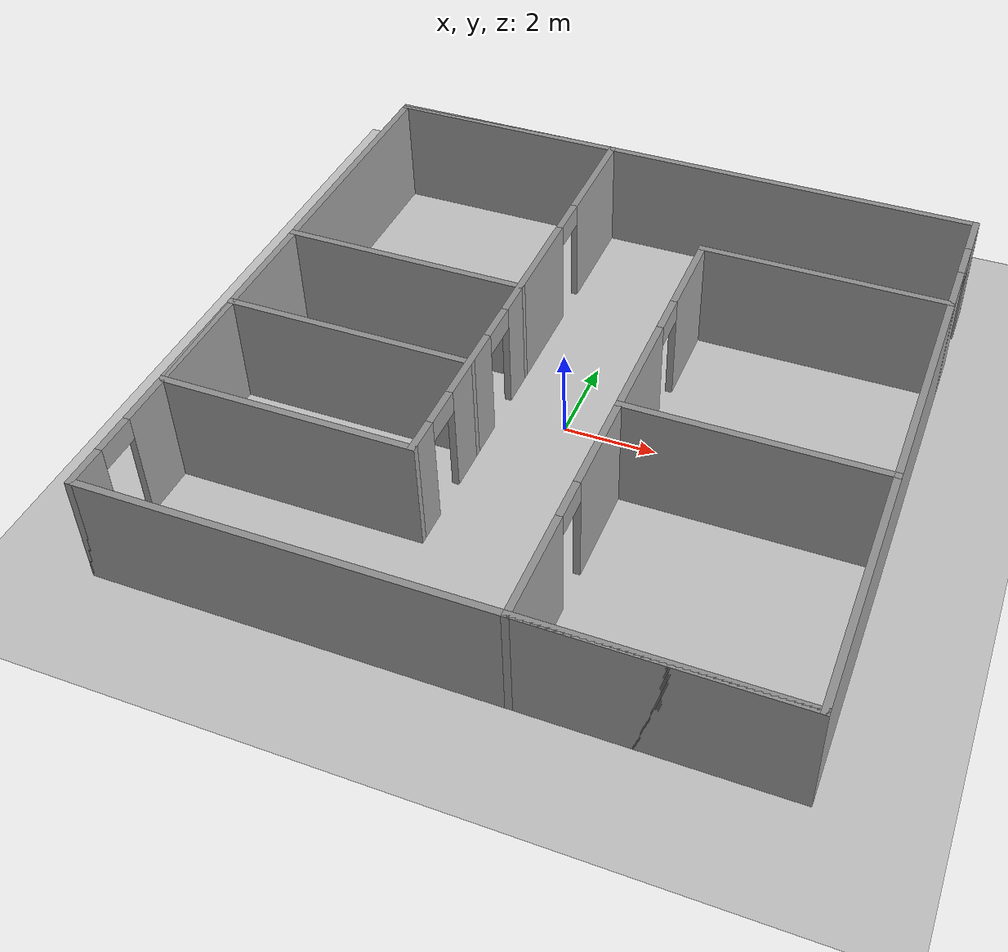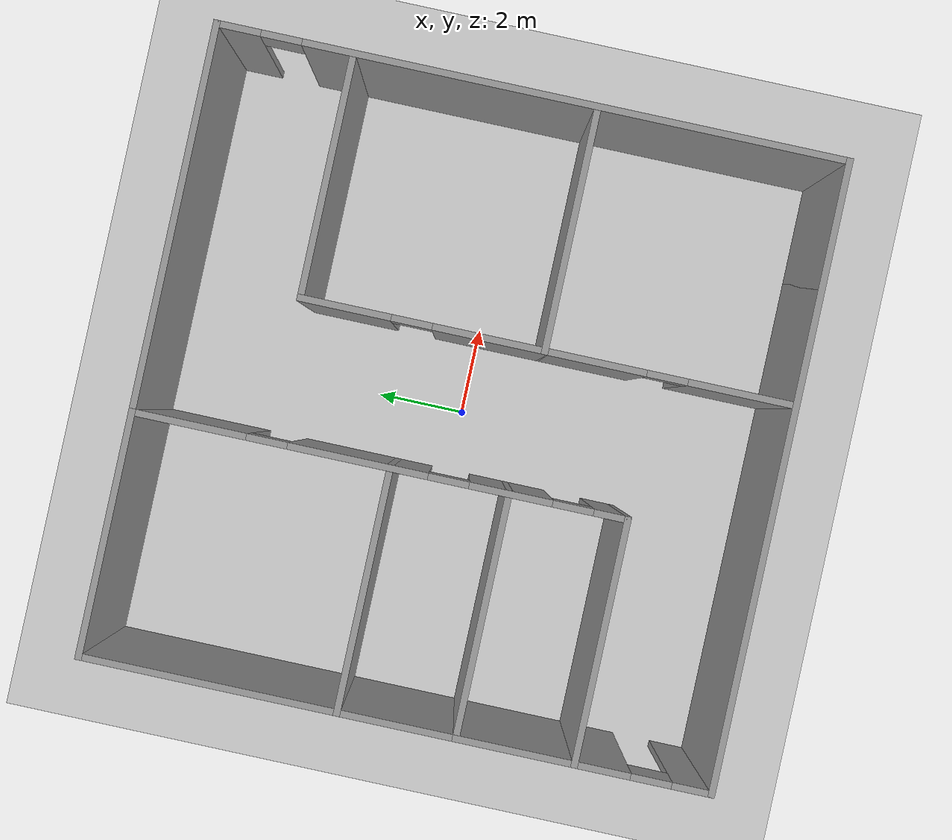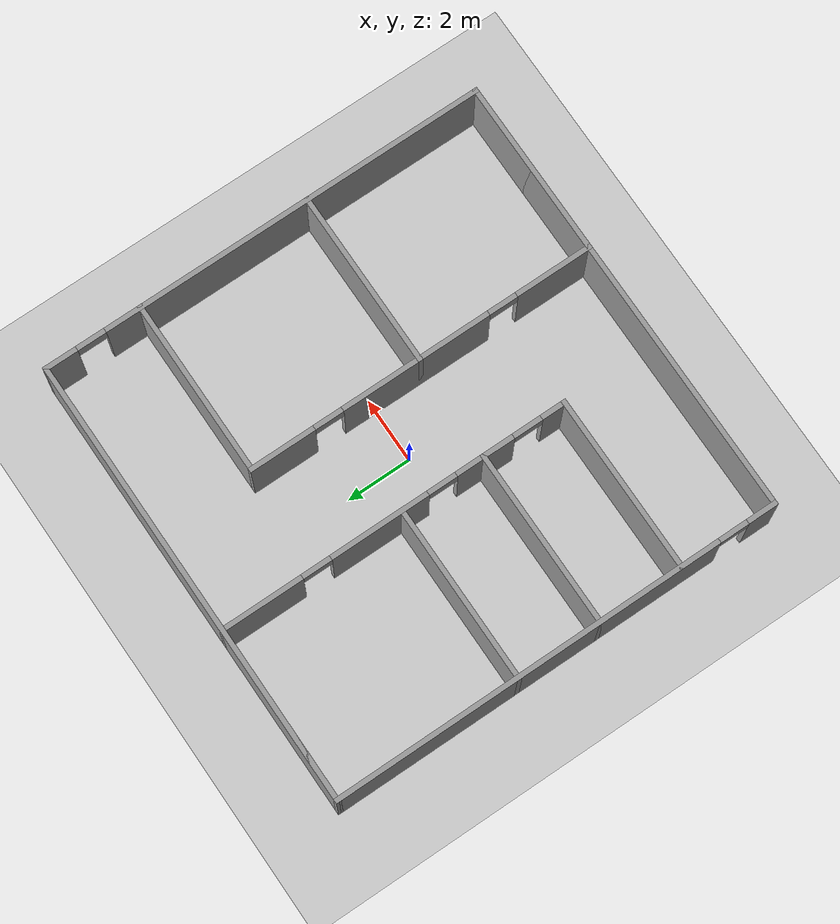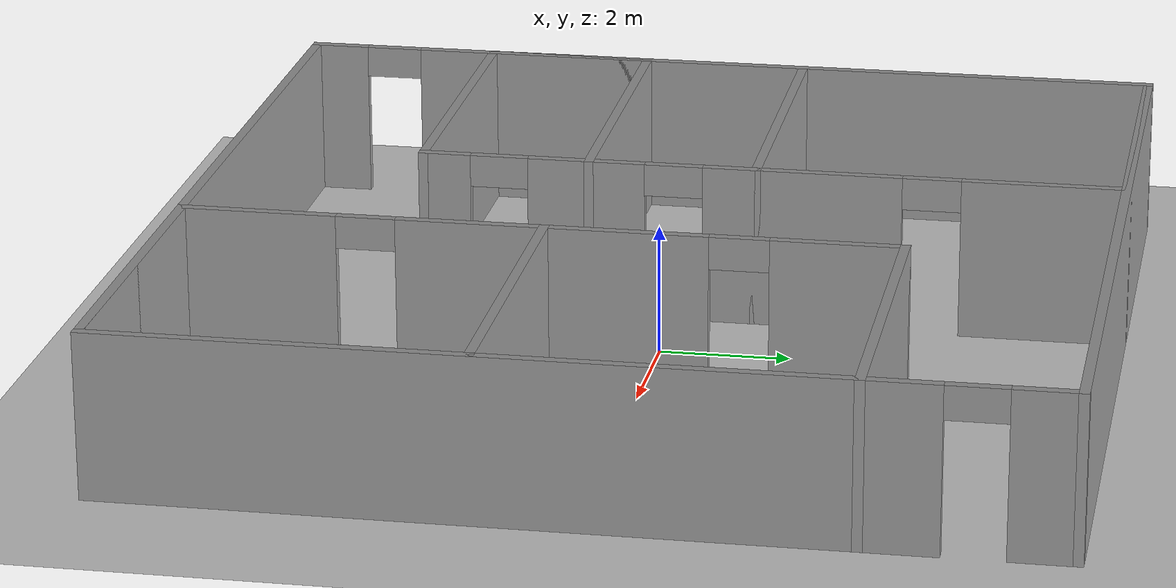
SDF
<sdf version="1.7">
 <world name="default">
  <light name="sun" type="directional">
   <pose>0 0 10 0 -0 0</pose>
   <diffuse>0.8 0.8 0.8 1</diffuse>
   <specular>0.2 0.2 0.2 1</specular>
   <attenuation>
    <range>1000</range>
    <constant>0.9</constant>
    <linear>0.01</linear>
    <quadratic>0.001</quadratic>
   </attenuation>
   <direction>-0.5 0.1 -0.9</direction>
   <spot><inner_angle>0</inner_angle><outer_angle>0</outer_angle><falloff>0</falloff></spot>
  </light>
  <model name="ground_plane">
   <static>1</static>
   <link name="link">
    <collision name="collision">
     <geometry><plane><normal>0 0 1</normal><size>100 100</size></plane></geometry>
     <surface><friction><ode><mu>100</mu><mu2>50</mu2></ode></friction></surface>
    </collision>
    <visual name="visual">
     <cast_shadows>0</cast_shadows>
     <geometry><plane><normal>0 0 1</normal><size>100 100</size></plane></geometry>
     <material>
      <script><uri>file://media/materials/scripts/gazebo.material</uri><name>Gazebo/Grey</name></script>
     </material>
    </visual>
   </link>
  </model>
  <gravity>0 0 -9.8</gravity>
  <magnetic_field>6e-06 2.3e-05 -4.2e-05</magnetic_field>
  <atmosphere type="adiabatic"/>
  <physics type="ode">
   <max_step_size>0.001</max_step_size>
   <real_time_factor>1</real_time_factor>
   <real_time_update_rate>1000</real_time_update_rate>
  </physics>
  <scene><ambient>0.4 0.4 0.4 1</ambient><background>0.7 0.7 0.7 1</background><shadows>1</shadows></scene>
  <audio><device>default</device></audio>
  <spherical_coordinates>
   <surface_model>EARTH_WGS84</surface_model>
   <latitude_deg>0</latitude_deg>
   <longitude_deg>0</longitude_deg>
   <elevation>0</elevation>
   <heading_deg>0</heading_deg>
  </spherical_coordinates>
  <model name="mapD">
   <pose>0.094946 -0.02237 0 0 -0 0</pose>
   <link name="Wall_0">
    <collision name="Wall_0_Collision">
     <geometry><box><size>14 0.15 2.5</size></box></geometry>
     <pose>0 0 1.25 0 -0 0</pose>
    </collision>
    <visual name="Wall_0_Visual">
     <pose>0 0 1.25 0 -0 0</pose>
     <geometry><box><size>14 0.15 2.5</size></box></geometry>
     <material>
      <script><uri>file://media/materials/scripts/gazebo.material</uri><name>Gazebo/Grey</name></script>
      <ambient>1 1 1 1</ambient>
     </material>
     <meta><layer>0</layer></meta>
    </visual>
    <pose>0 -6.925 0 0 -0 0</pose>
   </link>
   <link name="Wall_1">
    <pose>6.925 0 0 0 -0 1.5708</pose>
    <visual name="Wall_1_Visual_0">
     <pose>-0.972453 0 1.25 0 -0 0</pose>
     <geometry><box><size>12.0551 0.15 2.5</size></box></geometry>
     <material>
      <script><uri>file://media/materials/scripts/gazebo.material</uri><name>Gazebo/Grey</name></script>
      <ambient>1 1 1 1</ambient>
     </material>
     <meta><layer>0</layer></meta>
    </visual>
    <collision name="Wall_1_Collision_0">
     <geometry><box><size>12.0551 0.15 2.5</size></box></geometry>
     <pose>-0.972453 0 1.25 0 -0 0</pose>
    </collision>
    <visual name="Wall_1_Visual_1">
     <pose>6.47755 0 1.25 0 -0 0</pose>
     <geometry><box><size>1.04491 0.15 2.5</size></box></geometry>
     <material>
      <script><uri>file://media/materials/scripts/gazebo.material</uri><name>Gazebo/Grey</name></script>
      <ambient>1 1 1 1</ambient>
     </material>
     <meta><layer>0</layer></meta>
    </visual>
    <collision name="Wall_1_Collision_1">
     <geometry><box><size>1.04491 0.15 2.5</size></box></geometry>
     <pose>6.47755 0 1.25 0 -0 0</pose>
    </collision>
    <visual name="Wall_1_Visual_2">
     <pose>5.50509 0 2.25 0 -0 0</pose>
     <geometry><box><size>0.9 0.15 0.5</size></box></geometry>
     <material>
      <script><uri>file://media/materials/scripts/gazebo.material</uri><name>Gazebo/Grey</name></script>
      <ambient>1 1 1 1</ambient>
     </material>
     <meta><layer>0</layer></meta>
    </visual>
    <collision name="Wall_1_Collision_2">
     <geometry><box><size>0.9 0.15 0.5</size></box></geometry>
     <pose>5.50509 0 2.25 0 -0 0</pose>
    </collision>
   </link>
   <link name="Wall_10">
    <collision name="Wall_10_Collision">
     <geometry><box><size>5.5 0.15 2.5</size></box></geometry>
     <pose>0 0 1.25 0 -0 0</pose>
    </collision>
    <visual name="Wall_10_Visual">
     <pose>0 0 1.25 0 -0 0</pose>
     <geometry><box><size>5.5 0.15 2.5</size></box></geometry>
     <material>
      <script><uri>file://media/materials/scripts/gazebo.material</uri><name>Gazebo/Grey</name></script>
      <ambient>1 1 1 1</ambient>
     </material>
     <meta><layer>0</layer></meta>
    </visual>
    <pose>4.25 -1.425 0 0 -0 3.14159</pose>
   </link>
   <link name="Wall_12">
    <collision name="Wall_12_Collision">
     <geometry><box><size>5.5 0.15 2.5</size></box></geometry>
     <pose>0 0 1.25 0 -0 0</pose>
    </collision>
    <visual name="Wall_12_Visual">
     <pose>0 0 1.25 0 -0 0</pose>
     <geometry><box><size>5.5 0.15 2.5</size></box></geometry>
     <material>
      <script><uri>file://media/materials/scripts/gazebo.material</uri><name>Gazebo/Grey</name></script>
      <ambient>1 1 1 1</ambient>
     </material>
     <meta><layer>0</layer></meta>
    </visual>
    <pose>-4.25 6.925 0 0 -0 0</pose>
   </link>
   <link name="Wall_13">
    <pose>-1.575 1.5 0 0 -0 -1.5708</pose>
    <visual name="Wall_13_Visual_0">
     <pose>-4.21432 0 1.25 0 -0 0</pose>
     <geometry><box><size>2.57137 0.15 2.5</size></box></geometry>
     <material>
      <script><uri>file://media/materials/scripts/gazebo.material</uri><name>Gazebo/Grey</name></script>
      <ambient>1 1 1 1</ambient>
     </material>
     <meta><layer>0</layer></meta>
    </visual>
    <collision name="Wall_13_Collision_0">
     <geometry><box><size>2.57137 0.15 2.5</size></box></geometry>
     <pose>-4.21432 0 1.25 0 -0 0</pose>
    </collision>
    <visual name="Wall_13_Visual_1">
     <pose>-0.489399 0 1.25 0 -0 0</pose>
     <geometry><box><size>3.07847 0.15 2.5</size></box></geometry>
     <material>
      <script><uri>file://media/materials/scripts/gazebo.material</uri><name>Gazebo/Grey</name></script>
      <ambient>1 1 1 1</ambient>
     </material>
     <meta><layer>0</layer></meta>
    </visual>
    <collision name="Wall_13_Collision_1">
     <geometry><box><size>3.07847 0.15 2.5</size></box></geometry>
     <pose>-0.489399 0 1.25 0 -0 0</pose>
    </collision>
    <visual name="Wall_13_Visual_2">
     <pose>2.86454 0 1.25 0 -0 0</pose>
     <geometry><box><size>1.82941 0.15 2.5</size></box></geometry>
     <material>
      <script><uri>file://media/materials/scripts/gazebo.material</uri><name>Gazebo/Grey</name></script>
      <ambient>1 1 1 1</ambient>
     </material>
     <meta><layer>0</layer></meta>
    </visual>
    <collision name="Wall_13_Collision_2">
     <geometry><box><size>1.82941 0.15 2.5</size></box></geometry>
     <pose>2.86454 0 1.25 0 -0 0</pose>
    </collision>
    <visual name="Wall_13_Visual_3">
     <pose>5.08962 0 1.25 0 -0 0</pose>
     <geometry><box><size>0.820755 0.15 2.5</size></box></geometry>
     <material>
      <script><uri>file://media/materials/scripts/gazebo.material</uri><name>Gazebo/Grey</name></script>
      <ambient>1 1 1 1</ambient>
     </material>
     <meta><layer>0</layer></meta>
    </visual>
    <collision name="Wall_13_Collision_3">
     <geometry><box><size>0.820755 0.15 2.5</size></box></geometry>
     <pose>5.08962 0 1.25 0 -0 0</pose>
    </collision>
    <visual name="Wall_13_Visual_4">
     <pose>-2.47863 0 2.25 0 -0 0</pose>
     <geometry><box><size>0.9 0.15 0.5</size></box></geometry>
     <material>
      <script><uri>file://media/materials/scripts/gazebo.material</uri><name>Gazebo/Grey</name></script>
      <ambient>1 1 1 1</ambient>
     </material>
     <meta><layer>0</layer></meta>
    </visual>
    <collision name="Wall_13_Collision_4">
     <geometry><box><size>0.9 0.15 0.5</size></box></geometry>
     <pose>-2.47863 0 2.25 0 -0 0</pose>
    </collision>
    <visual name="Wall_13_Visual_5">
     <pose>1.49983 0 2.25 0 -0 0</pose>
     <geometry><box><size>0.9 0.15 0.5</size></box></geometry>
     <material>
      <script><uri>file://media/materials/scripts/gazebo.material</uri><name>Gazebo/Grey</name></script>
      <ambient>1 1 1 1</ambient>
     </material>
     <meta><layer>0</layer></meta>
    </visual>
    <collision name="Wall_13_Collision_5">
     <geometry><box><size>0.9 0.15 0.5</size></box></geometry>
     <pose>1.49983 0 2.25 0 -0 0</pose>
    </collision>
    <visual name="Wall_13_Visual_6">
     <pose>4.22924 0 2.25 0 -0 0</pose>
     <geometry><box><size>0.9 0.15 0.5</size></box></geometry>
     <material>
      <script><uri>file://media/materials/scripts/gazebo.material</uri><name>Gazebo/Grey</name></script>
      <ambient>1 1 1 1</ambient>
     </material>
     <meta><layer>0</layer></meta>
    </visual>
    <collision name="Wall_13_Collision_6">
     <geometry><box><size>0.9 0.15 0.5</size></box></geometry>
     <pose>4.22924 0 2.25 0 -0 0</pose>
    </collision>
   </link>
   <link name="Wall_14">
    <collision name="Wall_14_Collision">
     <geometry><box><size>5.5 0.15 2.5</size></box></geometry>
     <pose>0 0 1.25 0 -0 0</pose>
    </collision>
    <visual name="Wall_14_Visual">
     <pose>0 0 1.25 0 -0 0</pose>
     <geometry><box><size>5.5 0.15 2.5</size></box></geometry>
     <material>
      <script><uri>file://media/materials/scripts/gazebo.material</uri><name>Gazebo/Grey</name></script>
      <ambient>1 1 1 1</ambient>
     </material>
     <meta><layer>0</layer></meta>
    </visual>
    <pose>-4.25 -3.925 0 0 -0 3.14159</pose>
   </link>
   <link name="Wall_15">
    <collision name="Wall_15_Collision">
     <geometry><box><size>2.75 0.15 2.5</size></box></geometry>
     <pose>0 0 1.25 0 -0 0</pose>
    </collision>
    <visual name="Wall_15_Visual">
     <pose>0 0 1.25 0 -0 0</pose>
     <geometry><box><size>2.75 0.15 2.5</size></box></geometry>
     <material>
      <script><uri>file://media/materials/scripts/gazebo.material</uri><name>Gazebo/Grey</name></script>
      <ambient>1 1 1 1</ambient>
     </material>
     <meta><layer>0</layer></meta>
    </visual>
    <pose>-6.925 -2.625 0 0 -0 1.5708</pose>
   </link>
   <link name="Wall_16">
    <collision name="Wall_16_Collision">
     <geometry><box><size>5.5 0.15 2.5</size></box></geometry>
     <pose>0 0 1.25 0 -0 0</pose>
    </collision>
    <visual name="Wall_16_Visual">
     <pose>0 0 1.25 0 -0 0</pose>
     <geometry><box><size>5.5 0.15 2.5</size></box></geometry>
     <material>
      <script><uri>file://media/materials/scripts/gazebo.material</uri><name>Gazebo/Grey</name></script>
      <ambient>1 1 1 1</ambient>
     </material>
     <meta><layer>0</layer></meta>
    </visual>
    <pose>-4.25 -1.325 0 0 -0 0</pose>
   </link>
   <link name="Wall_18">
    <collision name="Wall_18_Collision">
     <geometry><box><size>5.5 0.15 2.5</size></box></geometry>
     <pose>0 0 1.25 0 -0 0</pose>
    </collision>
    <visual name="Wall_18_Visual">
     <pose>0 0 1.25 0 -0 0</pose>
     <geometry><box><size>5.5 0.15 2.5</size></box></geometry>
     <material>
      <script><uri>file://media/materials/scripts/gazebo.material</uri><name>Gazebo/Grey</name></script>
      <ambient>1 1 1 1</ambient>
     </material>
     <meta><layer>0</layer></meta>
    </visual>
    <pose>-4.25 1.275 0 0 -0 3.14159</pose>
   </link>
   <link name="Wall_2">
    <collision name="Wall_2_Collision">
     <geometry><box><size>14 0.15 2.5</size></box></geometry>
     <pose>0 0 1.25 0 -0 0</pose>
    </collision>
    <visual name="Wall_2_Visual">
     <pose>0 0 1.25 0 -0 0</pose>
     <geometry><box><size>14 0.15 2.5</size></box></geometry>
     <material>
      <script><uri>file://media/materials/scripts/gazebo.material</uri><name>Gazebo/Grey</name></script>
      <ambient>1 1 1 1</ambient>
     </material>
     <meta><layer>0</layer></meta>
    </visual>
    <pose>0 6.925 0 0 -0 3.14159</pose>
   </link>
   <link name="Wall_3">
    <pose>-6.925 0 0 0 -0 -1.5708</pose>
    <visual name="Wall_3_Visual_0">
     <pose>-0.92542 0 1.25 0 -0 0</pose>
     <geometry><box><size>12.1492 0.15 2.5</size></box></geometry>
     <material>
      <script><uri>file://media/materials/scripts/gazebo.material</uri><name>Gazebo/Grey</name></script>
      <ambient>1 1 1 1</ambient>
     </material>
     <meta><layer>0</layer></meta>
    </visual>
    <collision name="Wall_3_Collision_0">
     <geometry><box><size>12.1492 0.15 2.5</size></box></geometry>
     <pose>-0.92542 0 1.25 0 -0 0</pose>
    </collision>
    <visual name="Wall_3_Visual_1">
     <pose>6.52458 0 1.25 0 -0 0</pose>
     <geometry><box><size>0.95084 0.15 2.5</size></box></geometry>
     <material>
      <script><uri>file://media/materials/scripts/gazebo.material</uri><name>Gazebo/Grey</name></script>
      <ambient>1 1 1 1</ambient>
     </material>
     <meta><layer>0</layer></meta>
    </visual>
    <collision name="Wall_3_Collision_1">
     <geometry><box><size>0.95084 0.15 2.5</size></box></geometry>
     <pose>6.52458 0 1.25 0 -0 0</pose>
    </collision>
    <visual name="Wall_3_Visual_2">
     <pose>5.59916 0 2.25 0 -0 0</pose>
     <geometry><box><size>0.9 0.15 0.5</size></box></geometry>
     <material>
      <script><uri>file://media/materials/scripts/gazebo.material</uri><name>Gazebo/Grey</name></script>
      <ambient>1 1 1 1</ambient>
     </material>
     <meta><layer>0</layer></meta>
    </visual>
    <collision name="Wall_3_Collision_2">
     <geometry><box><size>0.9 0.15 0.5</size></box></geometry>
     <pose>5.59916 0 2.25 0 -0 0</pose>
    </collision>
   </link>
   <link name="Wall_5">
    <collision name="Wall_5_Collision">
     <geometry><box><size>5.5 0.15 2.5</size></box></geometry>
     <pose>0 0 1.25 0 -0 0</pose>
    </collision>
    <visual name="Wall_5_Visual">
     <pose>0 0 1.25 0 -0 0</pose>
     <geometry><box><size>5.5 0.15 2.5</size></box></geometry>
     <material>
      <script><uri>file://media/materials/scripts/gazebo.material</uri><name>Gazebo/Grey</name></script>
      <ambient>1 1 1 1</ambient>
     </material>
     <meta><layer>0</layer></meta>
    </visual>
    <pose>4.25 -6.925 0 0 -0 3.14159</pose>
   </link>
   <link name="Wall_6">
    <pose>1.575 -1.5 0 0 -0 1.5708</pose>
    <visual name="Wall_6_Visual_0">
     <pose>-4.27944 0 1.25 0 -0 0</pose>
     <geometry><box><size>2.44113 0.15 2.5</size></box></geometry>
     <material>
      <script><uri>file://media/materials/scripts/gazebo.material</uri><name>Gazebo/Grey</name></script>
      <ambient>1 1 1 1</ambient>
     </material>
     <meta><layer>0</layer></meta>
    </visual>
    <collision name="Wall_6_Collision_0">
     <geometry><box><size>2.44113 0.15 2.5</size></box></geometry>
     <pose>-4.27944 0 1.25 0 -0 0</pose>
    </collision>
    <visual name="Wall_6_Visual_1">
     <pose>0.190135 0 1.25 0 -0 0</pose>
     <geometry><box><size>4.69801 0.15 2.5</size></box></geometry>
     <material>
      <script><uri>file://media/materials/scripts/gazebo.material</uri><name>Gazebo/Grey</name></script>
      <ambient>1 1 1 1</ambient>
     </material>
     <meta><layer>0</layer></meta>
    </visual>
    <collision name="Wall_6_Collision_1">
     <geometry><box><size>4.69801 0.15 2.5</size></box></geometry>
     <pose>0.190135 0 1.25 0 -0 0</pose>
    </collision>
    <visual name="Wall_6_Visual_2">
     <pose>4.46957 0 1.25 0 -0 0</pose>
     <geometry><box><size>2.06086 0.15 2.5</size></box></geometry>
     <material>
      <script><uri>file://media/materials/scripts/gazebo.material</uri><name>Gazebo/Grey</name></script>
      <ambient>1 1 1 1</ambient>
     </material>
     <meta><layer>0</layer></meta>
    </visual>
    <collision name="Wall_6_Collision_2">
     <geometry><box><size>2.06086 0.15 2.5</size></box></geometry>
     <pose>4.46957 0 1.25 0 -0 0</pose>
    </collision>
    <visual name="Wall_6_Visual_3">
     <pose>-2.60887 0 2.25 0 -0 0</pose>
     <geometry><box><size>0.9 0.15 0.5</size></box></geometry>
     <material>
      <script><uri>file://media/materials/scripts/gazebo.material</uri><name>Gazebo/Grey</name></script>
      <ambient>1 1 1 1</ambient>
     </material>
     <meta><layer>0</layer></meta>
    </visual>
    <collision name="Wall_6_Collision_3">
     <geometry><box><size>0.9 0.15 0.5</size></box></geometry>
     <pose>-2.60887 0 2.25 0 -0 0</pose>
    </collision>
    <visual name="Wall_6_Visual_4">
     <pose>2.98914 0 2.25 0 -0 0</pose>
     <geometry><box><size>0.9 0.15 0.5</size></box></geometry>
     <material>
      <script><uri>file://media/materials/scripts/gazebo.material</uri><name>Gazebo/Grey</name></script>
      <ambient>1 1 1 1</ambient>
     </material>
     <meta><layer>0</layer></meta>
    </visual>
    <collision name="Wall_6_Collision_4">
     <geometry><box><size>0.9 0.15 0.5</size></box></geometry>
     <pose>2.98914 0 2.25 0 -0 0</pose>
    </collision>
   </link>
   <link name="Wall_7">
    <collision name="Wall_7_Collision">
     <geometry><box><size>5.5 0.15 2.5</size></box></geometry>
     <pose>0 0 1.25 0 -0 0</pose>
    </collision>
    <visual name="Wall_7_Visual">
     <pose>0 0 1.25 0 -0 0</pose>
     <geometry><box><size>5.5 0.15 2.5</size></box></geometry>
     <material>
      <script><uri>file://media/materials/scripts/gazebo.material</uri><name>Gazebo/Grey</name></script>
      <ambient>1 1 1 1</ambient>
     </material>
     <meta><layer>0</layer></meta>
    </visual>
    <pose>4.25 3.925 0 0 -0 0</pose>
   </link>
   <static>1</static>
  </model>
 </world>
</sdf>
